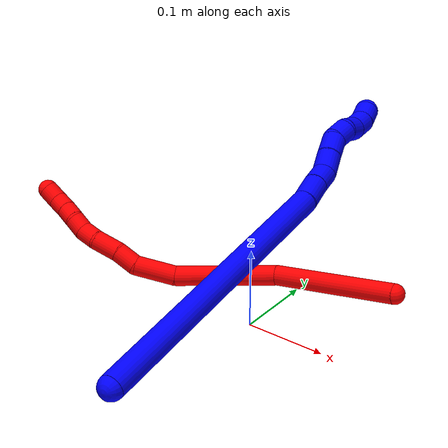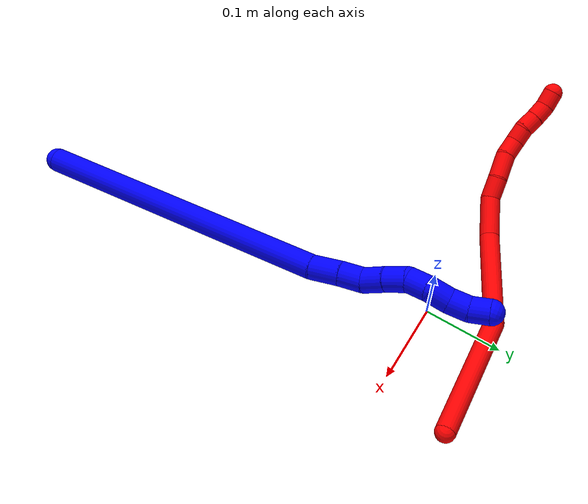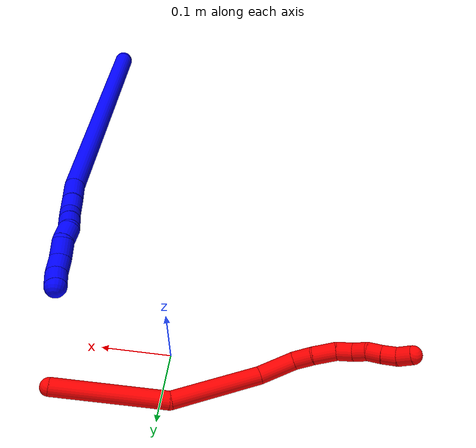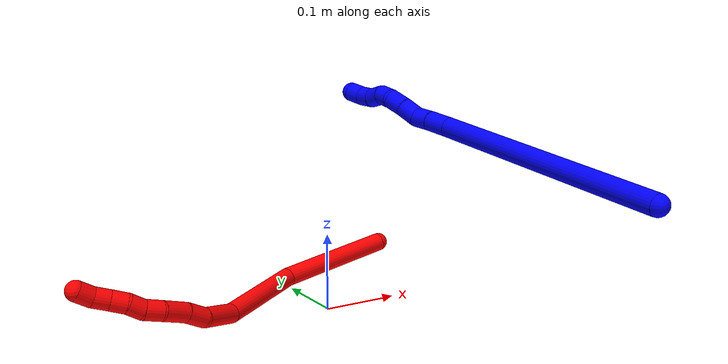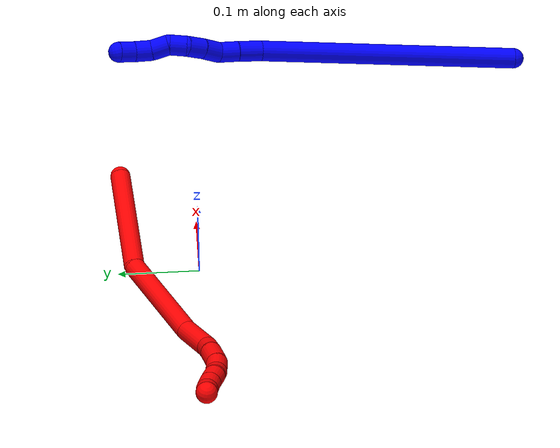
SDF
<sdf version="1.7">
 <world name="default">
  <plugin name="TubeGeneratorPlugin" filename="libtube_generator_plugin.so"/>
  <model name="photoneo_s_sensor">
   <static>1</static>
   <pose>0 0 2 1.57079 1.57079 3.14159</pose>
   <link name="link">
    <inertial><mass>0.1</mass></inertial>
    <sensor name="sensor" type="depth">
     <update_rate>30</update_rate>
     <camera>
      <horizontal_fov>1.22</horizontal_fov>
      <image><width>1920</width><height>1200</height><format>B8G8R8</format></image>
      <clip><near>0.1</near><far>4</far></clip>
      <depth_camera><output>points</output></depth_camera>
     </camera>
     <plugin name="camera_plugin" filename="libgazebo_ros_depth_camera.so">
      <baseline>0.2</baseline>
      <alwaysOn>1</alwaysOn>
      <updateRate>0.0</updateRate>
      <cameraName>camera_ir</cameraName>
      <imageTopicName>/camera/color/image_raw</imageTopicName>
      <cameraInfoTopicName>/camera/color/camera_info</cameraInfoTopicName>
      <depthImageTopicName>/camera/depth/image_raw</depthImageTopicName>
      <depthImageCameraInfoTopicName>/camera/depth/camera_info</depthImageCameraInfoTopicName>
      <pointCloudTopicName>/camera/depth/points</pointCloudTopicName>
      <frameName>fr_optical</frameName>
      <pointCloudCutoff>0.1</pointCloudCutoff>
      <pointCloudCutoffMax>2.0</pointCloudCutoffMax>
      <distortionK1>0</distortionK1>
      <distortionK2>0</distortionK2>
      <distortionK3>0</distortionK3>
      <distortionT1>0</distortionT1>
      <distortionT2>0</distortionT2>
      <CxPrime>0</CxPrime>
      <Cx>0</Cx>
      <Cy>0</Cy>
      <focalLength>0</focalLength>
      <hackBaseline>0</hackBaseline>
     </plugin>
    </sensor>
   </link>
  </model>
  <gravity>0 0 -9.8</gravity>
  <magnetic_field>6e-06 2.3e-05 -4.2e-05</magnetic_field>
  <atmosphere type="adiabatic"/>
  <physics name="default_physics" default="0" type="ode">
   <max_step_size>0.003</max_step_size>
   <real_time_factor>1</real_time_factor>
   <real_time_update_rate>1000</real_time_update_rate>
   <max_contacts>10000</max_contacts>
   <ode>
    <solver>
     <type>quick</type>
     <iters>100</iters>
     <sor>1.3</sor>
     <use_dynamic_moi_rescaling>0</use_dynamic_moi_rescaling>
    </solver>
    <constraints>
     <contact_max_correcting_vel>0</contact_max_correcting_vel>
     <contact_surface_layer>0.001</contact_surface_layer>
     <cfm>0</cfm>
     <erp>0.2</erp>
    </constraints>
   </ode>
  </physics>
  <scene><ambient>0.4 0.4 0.4 1</ambient><background>0.7 0.7 0.7 1</background><shadows>0</shadows></scene>
  <audio><device>default</device></audio>
  <spherical_coordinates>
   <surface_model>EARTH_WGS84</surface_model>
   <latitude_deg>0</latitude_deg>
   <longitude_deg>0</longitude_deg>
   <elevation>0</elevation>
   <heading_deg>0</heading_deg>
  </spherical_coordinates>
  <model name="bin">
   <static>1</static>
   <link name="bottom">
    <collision name="collision-bottom">
     <pose>0 0 -0.01 0 -0 0</pose>
     <geometry><box><size>0.8 0.6 0.02</size></box></geometry>
     <surface>
      <friction><ode><mu>100</mu><mu2>100</mu2></ode></friction>
      <contact><collide_bitmask>65535</collide_bitmask></contact>
     </surface>
    </collision>
   </link>
   <link name="west_wall">
    <collision name="collision-west_wall">
     <pose>-0.41 0 0.1 0 -0 0</pose>
     <geometry><box><size>0.02 0.6 0.2</size></box></geometry>
     <surface>
      <friction><ode><mu>100</mu><mu2>100</mu2></ode></friction>
      <contact><collide_bitmask>65535</collide_bitmask></contact>
     </surface>
    </collision>
   </link>
   <link name="east_wall">
    <collision name="collision-east_wall">
     <pose>0.41 0 0.1 0 -0 0</pose>
     <geometry><box><size>0.02 0.6 0.2</size></box></geometry>
     <surface>
      <friction><ode><mu>100</mu><mu2>100</mu2></ode></friction>
      <contact><collide_bitmask>65535</collide_bitmask></contact>
     </surface>
    </collision>
   </link>
   <link name="south_wall">
    <collision name="collision-south_wall">
     <pose>0 -0.31 0.1 0 -0 0</pose>
     <geometry><box><size>0.8 0.02 0.2</size></box></geometry>
     <surface>
      <friction><ode><mu>100</mu><mu2>100</mu2></ode></friction>
      <contact><collide_bitmask>65535</collide_bitmask></contact>
     </surface>
    </collision>
   </link>
   <link name="north_wall">
    <collision name="collision-north_wall">
     <pose>0 0.31 0.1 0 -0 0</pose>
     <geometry><box><size>0.8 0.02 0.2</size></box></geometry>
     <surface>
      <friction><ode><mu>100</mu><mu2>100</mu2></ode></friction>
      <contact><collide_bitmask>65535</collide_bitmask></contact>
     </surface>
    </collision>
   </link>
  </model>
  <model name="1">
   <static>0</static>
   <link name="1">
    <collision name="collision-cylinder-e_1_1_4">
     <pose>0.007935 0.034892 -0.154201 -2.91906 0.05015 -0.44164</pose>
     <geometry><cylinder><radius>0.0125</radius><length>0.316597</length></cylinder></geometry>
     <surface>
      <friction><ode><mu>1.16</mu><mu2>1.16</mu2><slip1>0</slip1><slip2>0</slip2></ode></friction>
      <contact><ode><kp>1e+06</kp><kd>1</kd><max_vel>0</max_vel><min_depth>0.001</min_depth></ode></contact>
     </surface>
    </collision>
    <visual name="visual-cylinder-e_1_1_4">
     <pose>0.007935 0.034892 -0.154201 -2.91906 0.05015 -0.44164</pose>
     <geometry><cylinder><radius>0.0125</radius><length>0.316597</length></cylinder></geometry>
     <material><ambient>0 0 1 1</ambient></material>
    </visual>
    <collision name="collision-cylinder-e_2_4_5">
     <pose>0.014095 0.073284 -0.322786 -2.90292 -0.119359 0.924599</pose>
     <geometry><cylinder><radius>0.0125</radius><length>0.029819</length></cylinder></geometry>
     <surface>
      <friction><ode><mu>1.16</mu><mu2>1.16</mu2><slip1>0</slip1><slip2>0</slip2></ode></friction>
      <contact><ode><kp>1e+06</kp><kd>1</kd><max_vel>0</max_vel><min_depth>0.001</min_depth></ode></contact>
     </surface>
    </collision>
    <visual name="visual-cylinder-e_2_4_5">
     <pose>0.014095 0.073284 -0.322786 -2.90292 -0.119359 0.924599</pose>
     <geometry><cylinder><radius>0.0125</radius><length>0.029819</length></cylinder></geometry>
     <material><ambient>0 0 1 1</ambient></material>
    </visual>
    <collision name="collision-cylinder-e_3_5_6">
     <pose>0.011456 0.07897 -0.348746 -2.95499 -0.073222 0.746205</pose>
     <geometry><cylinder><radius>0.0125</radius><length>0.023625</length></cylinder></geometry>
     <surface>
      <friction><ode><mu>1.16</mu><mu2>1.16</mu2><slip1>0</slip1><slip2>0</slip2></ode></friction>
      <contact><ode><kp>1e+06</kp><kd>1</kd><max_vel>0</max_vel><min_depth>0.001</min_depth></ode></contact>
     </surface>
    </collision>
    <visual name="visual-cylinder-e_3_5_6">
     <pose>0.011456 0.07897 -0.348746 -2.95499 -0.073222 0.746205</pose>
     <geometry><cylinder><radius>0.0125</radius><length>0.023625</length></cylinder></geometry>
     <material><ambient>0 0 1 1</ambient></material>
    </visual>
    <collision name="collision-cylinder-e_4_6_7">
     <pose>0.007463 0.087156 -0.370001 -2.58657 -0.268102 0.88432</pose>
     <geometry><cylinder><radius>0.0125</radius><length>0.02362</length></cylinder></geometry>
     <surface>
      <friction><ode><mu>1.16</mu><mu2>1.16</mu2><slip1>0</slip1><slip2>0</slip2></ode></friction>
      <contact><ode><kp>1e+06</kp><kd>1</kd><max_vel>0</max_vel><min_depth>0.001</min_depth></ode></contact>
     </surface>
    </collision>
    <visual name="visual-cylinder-e_4_6_7">
     <pose>0.007463 0.087156 -0.370001 -2.58657 -0.268102 0.88432</pose>
     <geometry><cylinder><radius>0.0125</radius><length>0.02362</length></cylinder></geometry>
     <material><ambient>0 0 1 1</ambient></material>
    </visual>
    <collision name="collision-cylinder-e_5_7_8">
     <pose>0.001521 0.098149 -0.389464 -2.66983 -0.250764 0.96596</pose>
     <geometry><cylinder><radius>0.0125</radius><length>0.022677</length></cylinder></geometry>
     <surface>
      <friction><ode><mu>1.16</mu><mu2>1.16</mu2><slip1>0</slip1><slip2>0</slip2></ode></friction>
      <contact><ode><kp>1e+06</kp><kd>1</kd><max_vel>0</max_vel><min_depth>0.001</min_depth></ode></contact>
     </surface>
    </collision>
    <visual name="visual-cylinder-e_5_7_8">
     <pose>0.001521 0.098149 -0.389464 -2.66983 -0.250764 0.96596</pose>
     <geometry><cylinder><radius>0.0125</radius><length>0.022677</length></cylinder></geometry>
     <material><ambient>0 0 1 1</ambient></material>
    </visual>
    <collision name="collision-cylinder-e_6_8_9">
     <pose>-0.000295 0.105761 -0.409324 -2.88713 0.095499 -0.715013</pose>
     <geometry><cylinder><radius>0.0125</radius><length>0.020918</length></cylinder></geometry>
     <surface>
      <friction><ode><mu>1.16</mu><mu2>1.16</mu2><slip1>0</slip1><slip2>0</slip2></ode></friction>
      <contact><ode><kp>1e+06</kp><kd>1</kd><max_vel>0</max_vel><min_depth>0.001</min_depth></ode></contact>
     </surface>
    </collision>
    <visual name="visual-cylinder-e_6_8_9">
     <pose>-0.000295 0.105761 -0.409324 -2.88713 0.095499 -0.715013</pose>
     <geometry><cylinder><radius>0.0125</radius><length>0.020918</length></cylinder></geometry>
     <material><ambient>0 0 1 1</ambient></material>
    </visual>
    <collision name="collision-cylinder-e_7_9_10">
     <pose>0.001594 0.10655 -0.430084 2.97177 0.082069 0.898877</pose>
     <geometry><cylinder><radius>0.0125</radius><length>0.021754</length></cylinder></geometry>
     <surface>
      <friction><ode><mu>1.16</mu><mu2>1.16</mu2><slip1>0</slip1><slip2>0</slip2></ode></friction>
      <contact><ode><kp>1e+06</kp><kd>1</kd><max_vel>0</max_vel><min_depth>0.001</min_depth></ode></contact>
     </surface>
    </collision>
    <visual name="visual-cylinder-e_7_9_10">
     <pose>0.001594 0.10655 -0.430084 2.97177 0.082069 0.898877</pose>
     <geometry><cylinder><radius>0.0125</radius><length>0.021754</length></cylinder></geometry>
     <material><ambient>0 0 1 1</ambient></material>
    </visual>
    <collision name="collision-cylinder-e_8_10_11">
     <pose>0.002769 0.105952 -0.451122 -3.02291 0.027183 -0.449842</pose>
     <geometry><cylinder><radius>0.0125</radius><length>0.020862</length></cylinder></geometry>
     <surface>
      <friction><ode><mu>1.16</mu><mu2>1.16</mu2><slip1>0</slip1><slip2>0</slip2></ode></friction>
      <contact><ode><kp>1e+06</kp><kd>1</kd><max_vel>0</max_vel><min_depth>0.001</min_depth></ode></contact>
     </surface>
    </collision>
    <visual name="visual-cylinder-e_8_10_11">
     <pose>0.002769 0.105952 -0.451122 -3.02291 0.027183 -0.449842</pose>
     <geometry><cylinder><radius>0.0125</radius><length>0.020862</length></cylinder></geometry>
     <material><ambient>0 0 1 1</ambient></material>
    </visual>
    <collision name="collision-cylinder-e_9_11_2">
     <pose>0.001068 0.109852 -0.470976 -2.86812 -0.198468 1.25275</pose>
     <geometry><cylinder><radius>0.0125</radius><length>0.020128</length></cylinder></geometry>
     <surface>
      <friction><ode><mu>1.16</mu><mu2>1.16</mu2><slip1>0</slip1><slip2>0</slip2></ode></friction>
      <contact><ode><kp>1e+06</kp><kd>1</kd><max_vel>0</max_vel><min_depth>0.001</min_depth></ode></contact>
     </surface>
    </collision>
    <visual name="visual-cylinder-e_9_11_2">
     <pose>0.001068 0.109852 -0.470976 -2.86812 -0.198468 1.25275</pose>
     <geometry><cylinder><radius>0.0125</radius><length>0.020128</length></cylinder></geometry>
     <material><ambient>0 0 1 1</ambient></material>
    </visual>
    <collision name="collision-sphere-2">
     <pose>-0.000916 0.112516 -0.480476 0 -0 0</pose>
     <geometry><sphere><radius>0.0125</radius></sphere></geometry>
     <surface>
      <friction><ode><mu>1.16</mu><mu2>1.16</mu2><slip1>0</slip1><slip2>0</slip2></ode></friction>
      <contact><ode><kp>1e+06</kp><kd>1</kd><max_vel>0</max_vel><min_depth>0.001</min_depth></ode></contact>
     </surface>
    </collision>
    <visual name="visual-sphere-2">
     <pose>-0.000916 0.112516 -0.480476 0 -0 0</pose>
     <geometry><sphere><radius>0.0125</radius></sphere></geometry>
     <material><ambient>0 0 1 1</ambient></material>
    </visual>
    <collision name="collision-sphere-11">
     <pose>0.003053 0.107187 -0.461476 0 -0 0</pose>
     <geometry><sphere><radius>0.0125</radius></sphere></geometry>
     <surface>
      <friction><ode><mu>1.16</mu><mu2>1.16</mu2><slip1>0</slip1><slip2>0</slip2></ode></friction>
      <contact><ode><kp>1e+06</kp><kd>1</kd><max_vel>0</max_vel><min_depth>0.001</min_depth></ode></contact>
     </surface>
    </collision>
    <visual name="visual-sphere-11">
     <pose>0.003053 0.107187 -0.461476 0 -0 0</pose>
     <geometry><sphere><radius>0.0125</radius></sphere></geometry>
     <material><ambient>0 0 1 1</ambient></material>
    </visual>
    <collision name="collision-sphere-10">
     <pose>0.002486 0.104718 -0.440768 0 -0 0</pose>
     <geometry><sphere><radius>0.0125</radius></sphere></geometry>
     <surface>
      <friction><ode><mu>1.16</mu><mu2>1.16</mu2><slip1>0</slip1><slip2>0</slip2></ode></friction>
      <contact><ode><kp>1e+06</kp><kd>1</kd><max_vel>0</max_vel><min_depth>0.001</min_depth></ode></contact>
     </surface>
    </collision>
    <visual name="visual-sphere-10">
     <pose>0.002486 0.104718 -0.440768 0 -0 0</pose>
     <geometry><sphere><radius>0.0125</radius></sphere></geometry>
     <material><ambient>0 0 1 1</ambient></material>
    </visual>
    <collision name="collision-sphere-9">
     <pose>0.000702 0.108382 -0.4194 0 -0 0</pose>
     <geometry><sphere><radius>0.0125</radius></sphere></geometry>
     <surface>
      <friction><ode><mu>1.16</mu><mu2>1.16</mu2><slip1>0</slip1><slip2>0</slip2></ode></friction>
      <contact><ode><kp>1e+06</kp><kd>1</kd><max_vel>0</max_vel><min_depth>0.001</min_depth></ode></contact>
     </surface>
    </collision>
    <visual name="visual-sphere-9">
     <pose>0.000702 0.108382 -0.4194 0 -0 0</pose>
     <geometry><sphere><radius>0.0125</radius></sphere></geometry>
     <material><ambient>0 0 1 1</ambient></material>
    </visual>
    <collision name="collision-sphere-4">
     <pose>0.015871 0.069785 -0.308402 0 -0 0</pose>
     <geometry><sphere><radius>0.0125</radius></sphere></geometry>
     <surface>
      <friction><ode><mu>1.16</mu><mu2>1.16</mu2><slip1>0</slip1><slip2>0</slip2></ode></friction>
      <contact><ode><kp>1e+06</kp><kd>1</kd><max_vel>0</max_vel><min_depth>0.001</min_depth></ode></contact>
     </surface>
    </collision>
    <visual name="visual-sphere-4">
     <pose>0.015871 0.069785 -0.308402 0 -0 0</pose>
     <geometry><sphere><radius>0.0125</radius></sphere></geometry>
     <material><ambient>0 0 1 1</ambient></material>
    </visual>
    <collision name="collision-sphere-1">
     <geometry><sphere><radius>0.0125</radius></sphere></geometry>
     <surface>
      <friction><ode><mu>1.16</mu><mu2>1.16</mu2><slip1>0</slip1><slip2>0</slip2></ode></friction>
      <contact><ode><kp>1e+06</kp><kd>1</kd><max_vel>0</max_vel><min_depth>0.001</min_depth></ode></contact>
     </surface>
    </collision>
    <visual name="visual-sphere-1">
     <geometry><sphere><radius>0.0125</radius></sphere></geometry>
     <material><ambient>0 0 1 1</ambient></material>
    </visual>
    <collision name="collision-sphere-8">
     <pose>-0.001292 0.103141 -0.399248 0 -0 0</pose>
     <geometry><sphere><radius>0.0125</radius></sphere></geometry>
     <surface>
      <friction><ode><mu>1.16</mu><mu2>1.16</mu2><slip1>0</slip1><slip2>0</slip2></ode></friction>
      <contact><ode><kp>1e+06</kp><kd>1</kd><max_vel>0</max_vel><min_depth>0.001</min_depth></ode></contact>
     </surface>
    </collision>
    <visual name="visual-sphere-8">
     <pose>-0.001292 0.103141 -0.399248 0 -0 0</pose>
     <geometry><sphere><radius>0.0125</radius></sphere></geometry>
     <material><ambient>0 0 1 1</ambient></material>
    </visual>
    <collision name="collision-sphere-5">
     <pose>0.01232 0.076784 -0.33717 0 -0 0</pose>
     <geometry><sphere><radius>0.0125</radius></sphere></geometry>
     <surface>
      <friction><ode><mu>1.16</mu><mu2>1.16</mu2><slip1>0</slip1><slip2>0</slip2></ode></friction>
      <contact><ode><kp>1e+06</kp><kd>1</kd><max_vel>0</max_vel><min_depth>0.001</min_depth></ode></contact>
     </surface>
    </collision>
    <visual name="visual-sphere-5">
     <pose>0.01232 0.076784 -0.33717 0 -0 0</pose>
     <geometry><sphere><radius>0.0125</radius></sphere></geometry>
     <material><ambient>0 0 1 1</ambient></material>
    </visual>
    <collision name="collision-sphere-6">
     <pose>0.010592 0.081155 -0.360323 0 -0 0</pose>
     <geometry><sphere><radius>0.0125</radius></sphere></geometry>
     <surface>
      <friction><ode><mu>1.16</mu><mu2>1.16</mu2><slip1>0</slip1><slip2>0</slip2></ode></friction>
      <contact><ode><kp>1e+06</kp><kd>1</kd><max_vel>0</max_vel><min_depth>0.001</min_depth></ode></contact>
     </surface>
    </collision>
    <visual name="visual-sphere-6">
     <pose>0.010592 0.081155 -0.360323 0 -0 0</pose>
     <geometry><sphere><radius>0.0125</radius></sphere></geometry>
     <material><ambient>0 0 1 1</ambient></material>
    </visual>
    <collision name="collision-sphere-7">
     <pose>0.004335 0.093157 -0.37968 0 -0 0</pose>
     <geometry><sphere><radius>0.0125</radius></sphere></geometry>
     <surface>
      <friction><ode><mu>1.16</mu><mu2>1.16</mu2><slip1>0</slip1><slip2>0</slip2></ode></friction>
      <contact><ode><kp>1e+06</kp><kd>1</kd><max_vel>0</max_vel><min_depth>0.001</min_depth></ode></contact>
     </surface>
    </collision>
    <visual name="visual-sphere-7">
     <pose>0.004335 0.093157 -0.37968 0 -0 0</pose>
     <geometry><sphere><radius>0.0125</radius></sphere></geometry>
     <material><ambient>0 0 1 1</ambient></material>
    </visual>
    <inertial>
     <pose>0.007044 0.056667 -0.242129 0 -0 0</pose>
     <mass>0.5</mass>
     <inertia>
      <ixx>0.001283</ixx>
      <ixy>0</ixy>
      <ixz>0</ixz>
      <iyy>-0.003456</iyy>
      <iyz>0</iyz>
      <izz>-0.000759</izz>
     </inertia>
    </inertial>
   </link>
   <pose>0.140819 -0.399597 0.202468 1.47677 0.173021 0.126154</pose>
  </model>
  <model name="2">
   <static>0</static>
   <link name="2">
    <collision name="collision-cylinder-e_1_1_4">
     <pose>-0.078529 -0.006684 -0.000472 1.64132 -1.48567 -1.55615</pose>
     <geometry><cylinder><radius>0.0125</radius><length>0.157628</length></cylinder></geometry>
     <surface>
      <friction><ode><mu>1.16</mu><mu2>1.16</mu2><slip1>0</slip1><slip2>0</slip2></ode></friction>
      <contact><ode><kp>1e+06</kp><kd>1</kd><max_vel>0</max_vel><min_depth>0.001</min_depth></ode></contact>
     </surface>
    </collision>
    <visual name="visual-cylinder-e_1_1_4">
     <pose>-0.078529 -0.006684 -0.000472 1.64132 -1.48567 -1.55615</pose>
     <geometry><cylinder><radius>0.0125</radius><length>0.157628</length></cylinder></geometry>
     <material><ambient>1 0 0 1</ambient></material>
    </visual>
    <collision name="collision-cylinder-e_2_4_5">
     <pose>-0.213209 -0.042859 0.002099 1.46797 -1.08501 -0.996197</pose>
     <geometry><cylinder><radius>0.0125</radius><length>0.126995</length></cylinder></geometry>
     <surface>
      <friction><ode><mu>1.16</mu><mu2>1.16</mu2><slip1>0</slip1><slip2>0</slip2></ode></friction>
      <contact><ode><kp>1e+06</kp><kd>1</kd><max_vel>0</max_vel><min_depth>0.001</min_depth></ode></contact>
     </surface>
    </collision>
    <visual name="visual-cylinder-e_2_4_5">
     <pose>-0.213209 -0.042859 0.002099 1.46797 -1.08501 -0.996197</pose>
     <geometry><cylinder><radius>0.0125</radius><length>0.126995</length></cylinder></geometry>
     <material><ambient>1 0 0 1</ambient></material>
    </visual>
    <collision name="collision-cylinder-e_3_5_6">
     <pose>-0.291113 -0.083489 0.01397 0.900615 -0.992025 -0.511739</pose>
     <geometry><cylinder><radius>0.0125</radius><length>0.05197</length></cylinder></geometry>
     <surface>
      <friction><ode><mu>1.16</mu><mu2>1.16</mu2><slip1>0</slip1><slip2>0</slip2></ode></friction>
      <contact><ode><kp>1e+06</kp><kd>1</kd><max_vel>0</max_vel><min_depth>0.001</min_depth></ode></contact>
     </surface>
    </collision>
    <visual name="visual-cylinder-e_3_5_6">
     <pose>-0.291113 -0.083489 0.01397 0.900615 -0.992025 -0.511739</pose>
     <geometry><cylinder><radius>0.0125</radius><length>0.05197</length></cylinder></geometry>
     <material><ambient>1 0 0 1</ambient></material>
    </visual>
    <collision name="collision-cylinder-e_4_6_7">
     <pose>-0.324132 -0.096076 0.030737 0.180399 -0.949233 -0.092872</pose>
     <geometry><cylinder><radius>0.0125</radius><length>0.027716</length></cylinder></geometry>
     <surface>
      <friction><ode><mu>1.16</mu><mu2>1.16</mu2><slip1>0</slip1><slip2>0</slip2></ode></friction>
      <contact><ode><kp>1e+06</kp><kd>1</kd><max_vel>0</max_vel><min_depth>0.001</min_depth></ode></contact>
     </surface>
    </collision>
    <visual name="visual-cylinder-e_4_6_7">
     <pose>-0.324132 -0.096076 0.030737 0.180399 -0.949233 -0.092872</pose>
     <geometry><cylinder><radius>0.0125</radius><length>0.027716</length></cylinder></geometry>
     <material><ambient>1 0 0 1</ambient></material>
    </visual>
    <collision name="collision-cylinder-e_5_7_8">
     <pose>-0.349984 -0.099992 0.045667 0.339386 -1.10055 -0.20946</pose>
     <geometry><cylinder><radius>0.0125</radius><length>0.032723</length></cylinder></geometry>
     <surface>
      <friction><ode><mu>1.16</mu><mu2>1.16</mu2><slip1>0</slip1><slip2>0</slip2></ode></friction>
      <contact><ode><kp>1e+06</kp><kd>1</kd><max_vel>0</max_vel><min_depth>0.001</min_depth></ode></contact>
     </surface>
    </collision>
    <visual name="visual-cylinder-e_5_7_8">
     <pose>-0.349984 -0.099992 0.045667 0.339386 -1.10055 -0.20946</pose>
     <geometry><cylinder><radius>0.0125</radius><length>0.032723</length></cylinder></geometry>
     <material><ambient>1 0 0 1</ambient></material>
    </visual>
    <collision name="collision-cylinder-e_6_8_9">
     <pose>-0.375217 -0.101461 0.056674 -0.243737 -1.20004 0.167196</pose>
     <geometry><cylinder><radius>0.0125</radius><length>0.022848</length></cylinder></geometry>
     <surface>
      <friction><ode><mu>1.16</mu><mu2>1.16</mu2><slip1>0</slip1><slip2>0</slip2></ode></friction>
      <contact><ode><kp>1e+06</kp><kd>1</kd><max_vel>0</max_vel><min_depth>0.001</min_depth></ode></contact>
     </surface>
    </collision>
    <visual name="visual-cylinder-e_6_8_9">
     <pose>-0.375217 -0.101461 0.056674 -0.243737 -1.20004 0.167196</pose>
     <geometry><cylinder><radius>0.0125</radius><length>0.022848</length></cylinder></geometry>
     <material><ambient>1 0 0 1</ambient></material>
    </visual>
    <collision name="collision-cylinder-e_7_9_10">
     <pose>-0.393692 -0.098939 0.066736 -0.246808 -0.898157 0.119407</pose>
     <geometry><cylinder><radius>0.0125</radius><length>0.020011</length></cylinder></geometry>
     <surface>
      <friction><ode><mu>1.16</mu><mu2>1.16</mu2><slip1>0</slip1><slip2>0</slip2></ode></friction>
      <contact><ode><kp>1e+06</kp><kd>1</kd><max_vel>0</max_vel><min_depth>0.001</min_depth></ode></contact>
     </surface>
    </collision>
    <visual name="visual-cylinder-e_7_9_10">
     <pose>-0.393692 -0.098939 0.066736 -0.246808 -0.898157 0.119407</pose>
     <geometry><cylinder><radius>0.0125</radius><length>0.020011</length></cylinder></geometry>
     <material><ambient>1 0 0 1</ambient></material>
    </visual>
    <collision name="collision-cylinder-e_8_10_11">
     <pose>-0.410197 -0.094341 0.076729 -0.661788 -1.04776 0.391833</pose>
     <geometry><cylinder><radius>0.0125</radius><length>0.020038</length></cylinder></geometry>
     <surface>
      <friction><ode><mu>1.16</mu><mu2>1.16</mu2><slip1>0</slip1><slip2>0</slip2></ode></friction>
      <contact><ode><kp>1e+06</kp><kd>1</kd><max_vel>0</max_vel><min_depth>0.001</min_depth></ode></contact>
     </surface>
    </collision>
    <visual name="visual-cylinder-e_8_10_11">
     <pose>-0.410197 -0.094341 0.076729 -0.661788 -1.04776 0.391833</pose>
     <geometry><cylinder><radius>0.0125</radius><length>0.020038</length></cylinder></geometry>
     <material><ambient>1 0 0 1</ambient></material>
    </visual>
    <collision name="collision-cylinder-e_9_11_12">
     <pose>-0.427727 -0.088954 0.0848 -0.511067 -1.08031 0.310779</pose>
     <geometry><cylinder><radius>0.0125</radius><length>0.020068</length></cylinder></geometry>
     <surface>
      <friction><ode><mu>1.16</mu><mu2>1.16</mu2><slip1>0</slip1><slip2>0</slip2></ode></friction>
      <contact><ode><kp>1e+06</kp><kd>1</kd><max_vel>0</max_vel><min_depth>0.001</min_depth></ode></contact>
     </surface>
    </collision>
    <visual name="visual-cylinder-e_9_11_12">
     <pose>-0.427727 -0.088954 0.0848 -0.511067 -1.08031 0.310779</pose>
     <geometry><cylinder><radius>0.0125</radius><length>0.020068</length></cylinder></geometry>
     <material><ambient>1 0 0 1</ambient></material>
    </visual>
    <collision name="collision-cylinder-e_10_12_2">
     <pose>-0.44448 -0.085837 0.095002 -0.13159 -0.910824 0.064517</pose>
     <geometry><cylinder><radius>0.0125</radius><length>0.020002</length></cylinder></geometry>
     <surface>
      <friction><ode><mu>1.16</mu><mu2>1.16</mu2><slip1>0</slip1><slip2>0</slip2></ode></friction>
      <contact><ode><kp>1e+06</kp><kd>1</kd><max_vel>0</max_vel><min_depth>0.001</min_depth></ode></contact>
     </surface>
    </collision>
    <visual name="visual-cylinder-e_10_12_2">
     <pose>-0.44448 -0.085837 0.095002 -0.13159 -0.910824 0.064517</pose>
     <geometry><cylinder><radius>0.0125</radius><length>0.020002</length></cylinder></geometry>
     <material><ambient>1 0 0 1</ambient></material>
    </visual>
    <collision name="collision-sphere-2">
     <pose>-0.452381 -0.085033 0.10108 0 -0 0</pose>
     <geometry><sphere><radius>0.0125</radius></sphere></geometry>
     <surface>
      <friction><ode><mu>1.16</mu><mu2>1.16</mu2><slip1>0</slip1><slip2>0</slip2></ode></friction>
      <contact><ode><kp>1e+06</kp><kd>1</kd><max_vel>0</max_vel><min_depth>0.001</min_depth></ode></contact>
     </surface>
    </collision>
    <visual name="visual-sphere-2">
     <pose>-0.452381 -0.085033 0.10108 0 -0 0</pose>
     <geometry><sphere><radius>0.0125</radius></sphere></geometry>
     <material><ambient>1 0 0 1</ambient></material>
    </visual>
    <collision name="collision-sphere-12">
     <pose>-0.436579 -0.086642 0.088923 0 -0 0</pose>
     <geometry><sphere><radius>0.0125</radius></sphere></geometry>
     <surface>
      <friction><ode><mu>1.16</mu><mu2>1.16</mu2><slip1>0</slip1><slip2>0</slip2></ode></friction>
      <contact><ode><kp>1e+06</kp><kd>1</kd><max_vel>0</max_vel><min_depth>0.001</min_depth></ode></contact>
     </surface>
    </collision>
    <visual name="visual-sphere-12">
     <pose>-0.436579 -0.086642 0.088923 0 -0 0</pose>
     <geometry><sphere><radius>0.0125</radius></sphere></geometry>
     <material><ambient>1 0 0 1</ambient></material>
    </visual>
    <collision name="collision-sphere-11">
     <pose>-0.418876 -0.091265 0.080677 0 -0 0</pose>
     <geometry><sphere><radius>0.0125</radius></sphere></geometry>
     <surface>
      <friction><ode><mu>1.16</mu><mu2>1.16</mu2><slip1>0</slip1><slip2>0</slip2></ode></friction>
      <contact><ode><kp>1e+06</kp><kd>1</kd><max_vel>0</max_vel><min_depth>0.001</min_depth></ode></contact>
     </surface>
    </collision>
    <visual name="visual-sphere-11">
     <pose>-0.418876 -0.091265 0.080677 0 -0 0</pose>
     <geometry><sphere><radius>0.0125</radius></sphere></geometry>
     <material><ambient>1 0 0 1</ambient></material>
    </visual>
    <collision name="collision-sphere-10">
     <pose>-0.401518 -0.097416 0.072781 0 -0 0</pose>
     <geometry><sphere><radius>0.0125</radius></sphere></geometry>
     <surface>
      <friction><ode><mu>1.16</mu><mu2>1.16</mu2><slip1>0</slip1><slip2>0</slip2></ode></friction>
      <contact><ode><kp>1e+06</kp><kd>1</kd><max_vel>0</max_vel><min_depth>0.001</min_depth></ode></contact>
     </surface>
    </collision>
    <visual name="visual-sphere-10">
     <pose>-0.401518 -0.097416 0.072781 0 -0 0</pose>
     <geometry><sphere><radius>0.0125</radius></sphere></geometry>
     <material><ambient>1 0 0 1</ambient></material>
    </visual>
    <collision name="collision-sphere-9">
     <pose>-0.385865 -0.100462 0.060691 0 -0 0</pose>
     <geometry><sphere><radius>0.0125</radius></sphere></geometry>
     <surface>
      <friction><ode><mu>1.16</mu><mu2>1.16</mu2><slip1>0</slip1><slip2>0</slip2></ode></friction>
      <contact><ode><kp>1e+06</kp><kd>1</kd><max_vel>0</max_vel><min_depth>0.001</min_depth></ode></contact>
     </surface>
    </collision>
    <visual name="visual-sphere-9">
     <pose>-0.385865 -0.100462 0.060691 0 -0 0</pose>
     <geometry><sphere><radius>0.0125</radius></sphere></geometry>
     <material><ambient>1 0 0 1</ambient></material>
    </visual>
    <collision name="collision-sphere-4">
     <pose>-0.157057 -0.013368 -0.000944 0 -0 0</pose>
     <geometry><sphere><radius>0.0125</radius></sphere></geometry>
     <surface>
      <friction><ode><mu>1.16</mu><mu2>1.16</mu2><slip1>0</slip1><slip2>0</slip2></ode></friction>
      <contact><ode><kp>1e+06</kp><kd>1</kd><max_vel>0</max_vel><min_depth>0.001</min_depth></ode></contact>
     </surface>
    </collision>
    <visual name="visual-sphere-4">
     <pose>-0.157057 -0.013368 -0.000944 0 -0 0</pose>
     <geometry><sphere><radius>0.0125</radius></sphere></geometry>
     <material><ambient>1 0 0 1</ambient></material>
    </visual>
    <collision name="collision-sphere-1">
     <geometry><sphere><radius>0.0125</radius></sphere></geometry>
     <surface>
      <friction><ode><mu>1.16</mu><mu2>1.16</mu2><slip1>0</slip1><slip2>0</slip2></ode></friction>
      <contact><ode><kp>1e+06</kp><kd>1</kd><max_vel>0</max_vel><min_depth>0.001</min_depth></ode></contact>
     </surface>
    </collision>
    <visual name="visual-sphere-1">
     <geometry><sphere><radius>0.0125</radius></sphere></geometry>
     <material><ambient>1 0 0 1</ambient></material>
    </visual>
    <collision name="collision-sphere-8">
     <pose>-0.36457 -0.10246 0.052658 0 -0 0</pose>
     <geometry><sphere><radius>0.0125</radius></sphere></geometry>
     <surface>
      <friction><ode><mu>1.16</mu><mu2>1.16</mu2><slip1>0</slip1><slip2>0</slip2></ode></friction>
      <contact><ode><kp>1e+06</kp><kd>1</kd><max_vel>0</max_vel><min_depth>0.001</min_depth></ode></contact>
     </surface>
    </collision>
    <visual name="visual-sphere-8">
     <pose>-0.36457 -0.10246 0.052658 0 -0 0</pose>
     <geometry><sphere><radius>0.0125</radius></sphere></geometry>
     <material><ambient>1 0 0 1</ambient></material>
    </visual>
    <collision name="collision-sphere-5">
     <pose>-0.26936 -0.07235 0.005142 0 -0 0</pose>
     <geometry><sphere><radius>0.0125</radius></sphere></geometry>
     <surface>
      <friction><ode><mu>1.16</mu><mu2>1.16</mu2><slip1>0</slip1><slip2>0</slip2></ode></friction>
      <contact><ode><kp>1e+06</kp><kd>1</kd><max_vel>0</max_vel><min_depth>0.001</min_depth></ode></contact>
     </surface>
    </collision>
    <visual name="visual-sphere-5">
     <pose>-0.26936 -0.07235 0.005142 0 -0 0</pose>
     <geometry><sphere><radius>0.0125</radius></sphere></geometry>
     <material><ambient>1 0 0 1</ambient></material>
    </visual>
    <collision name="collision-sphere-6">
     <pose>-0.312866 -0.094628 0.022799 0 -0 0</pose>
     <geometry><sphere><radius>0.0125</radius></sphere></geometry>
     <surface>
      <friction><ode><mu>1.16</mu><mu2>1.16</mu2><slip1>0</slip1><slip2>0</slip2></ode></friction>
      <contact><ode><kp>1e+06</kp><kd>1</kd><max_vel>0</max_vel><min_depth>0.001</min_depth></ode></contact>
     </surface>
    </collision>
    <visual name="visual-sphere-6">
     <pose>-0.312866 -0.094628 0.022799 0 -0 0</pose>
     <geometry><sphere><radius>0.0125</radius></sphere></geometry>
     <material><ambient>1 0 0 1</ambient></material>
    </visual>
    <collision name="collision-sphere-7">
     <pose>-0.335398 -0.097524 0.038676 0 -0 0</pose>
     <geometry><sphere><radius>0.0125</radius></sphere></geometry>
     <surface>
      <friction><ode><mu>1.16</mu><mu2>1.16</mu2><slip1>0</slip1><slip2>0</slip2></ode></friction>
      <contact><ode><kp>1e+06</kp><kd>1</kd><max_vel>0</max_vel><min_depth>0.001</min_depth></ode></contact>
     </surface>
    </collision>
    <visual name="visual-sphere-7">
     <pose>-0.335398 -0.097524 0.038676 0 -0 0</pose>
     <geometry><sphere><radius>0.0125</radius></sphere></geometry>
     <material><ambient>1 0 0 1</ambient></material>
    </visual>
    <inertial>
     <pose>-0.23433 -0.052922 0.022069 0 -0 0</pose>
     <mass>0.5</mass>
     <inertia>
      <ixx>-7.7e-05</ixx>
      <ixy>0</ixy>
      <ixz>0</ixz>
      <iyy>0.000389</iyy>
      <iyz>0</iyz>
      <izz>0.000634</izz>
     </inertia>
    </inertial>
   </link>
   <pose>0.138772 0.093575 0.048279 0.049467 -0.14125 0.003717</pose>
  </model>
 </world>
</sdf>
